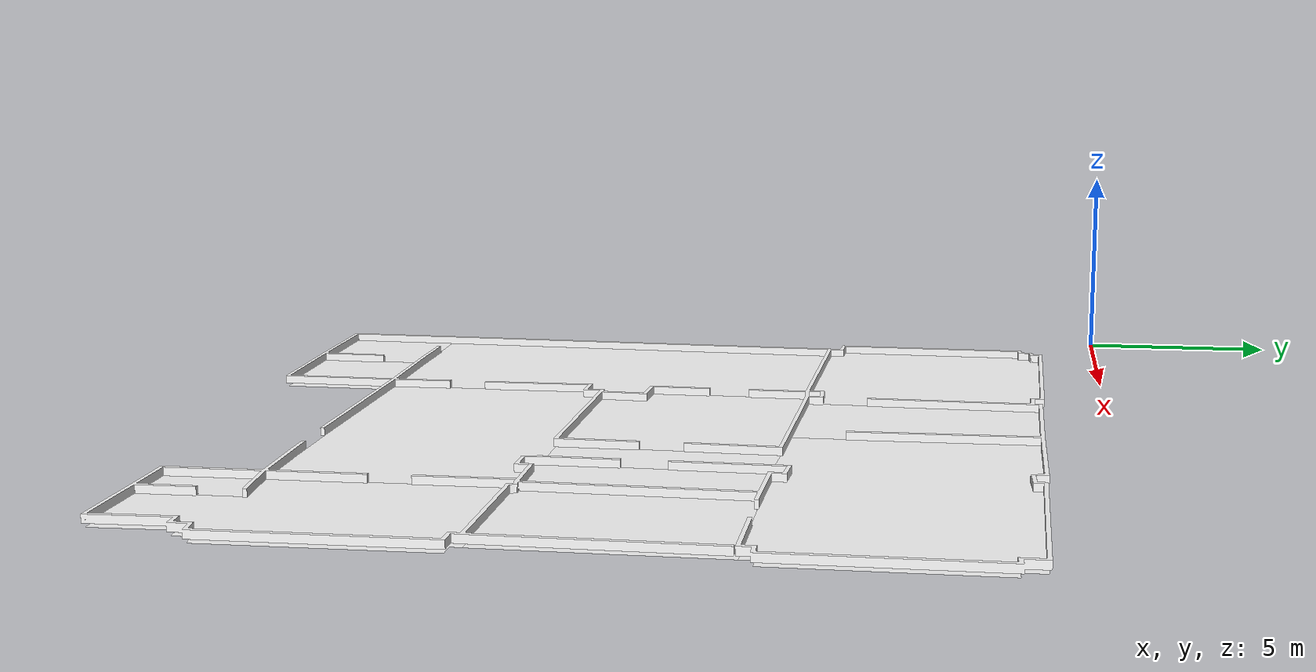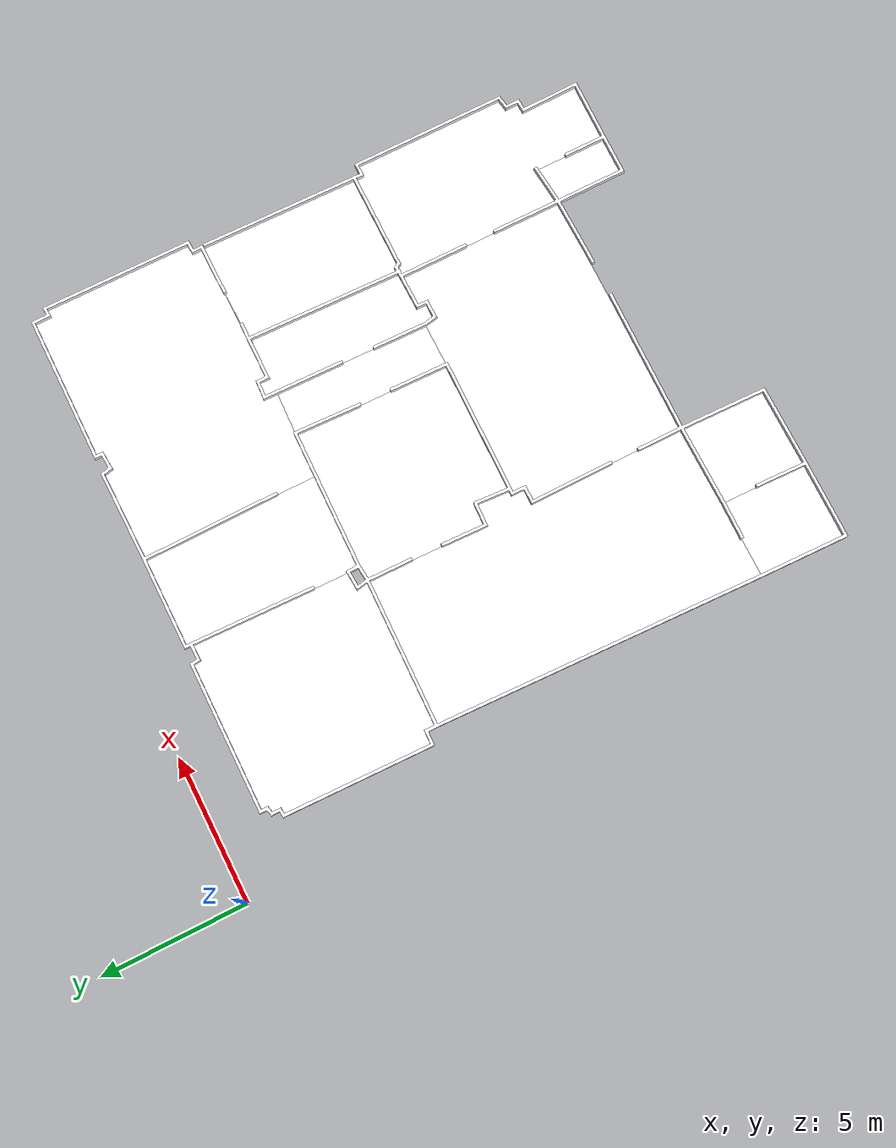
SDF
<?xml version='1.0' encoding='utf-8'?>
<sdf version="1.7">
  <model name="starbots_complete_L1">
    <static>true</static>
    <link name="floor_1">
      <visual name="visual">
        <geometry>
          <mesh>
            <uri>model://starbots_complete_L1/meshes/floor_1.obj</uri>
          </mesh>
        </geometry>
        <material>
          <diffuse>1.0 1.0 1.0</diffuse>
          <specular>0.1 0.1 0.1</specular>
          <pbr>
            <metal>
              <metalness>0.0</metalness>
              <albedo_map>model://starbots_complete_L1/meshes/blue_linoleum.png</albedo_map>
            </metal>
          </pbr>
          <script>
            <uri>model://starbots_complete_L1/meshes/</uri>
            <name>floor_1_Diffuse</name>
          </script>
        </material>
      </visual>
      <collision name="collision">
        <geometry>
          <mesh>
            <uri>model://starbots_complete_L1/meshes/floor_1.obj</uri>
          </mesh>
        </geometry>
        <surface>
          <contact>
            <collide_bitmask>0x01</collide_bitmask>
          </contact>
        </surface>
      </collision>
    </link>
    <link name="floor_2">
      <visual name="visual">
        <geometry>
          <mesh>
            <uri>model://starbots_complete_L1/meshes/floor_2.obj</uri>
          </mesh>
        </geometry>
        <material>
          <diffuse>1.0 1.0 1.0</diffuse>
          <specular>0.1 0.1 0.1</specular>
          <pbr>
            <metal>
              <metalness>0.0</metalness>
              <albedo_map>model://starbots_complete_L1/meshes/blue_linoleum.png</albedo_map>
            </metal>
          </pbr>
          <script>
            <uri>model://starbots_complete_L1/meshes/</uri>
            <name>floor_2_Diffuse</name>
          </script>
        </material>
      </visual>
      <collision name="collision">
        <geometry>
          <mesh>
            <uri>model://starbots_complete_L1/meshes/floor_2.obj</uri>
          </mesh>
        </geometry>
        <surface>
          <contact>
            <collide_bitmask>0x01</collide_bitmask>
          </contact>
        </surface>
      </collision>
    </link>
    <link name="floor_3">
      <visual name="visual">
        <geometry>
          <mesh>
            <uri>model://starbots_complete_L1/meshes/floor_3.obj</uri>
          </mesh>
        </geometry>
        <material>
          <diffuse>1.0 1.0 1.0</diffuse>
          <specular>0.1 0.1 0.1</specular>
          <pbr>
            <metal>
              <metalness>0.0</metalness>
              <albedo_map>model://starbots_complete_L1/meshes/blue_linoleum.png</albedo_map>
            </metal>
          </pbr>
          <script>
            <uri>model://starbots_complete_L1/meshes/</uri>
            <name>floor_3_Diffuse</name>
          </script>
        </material>
      </visual>
      <collision name="collision">
        <geometry>
          <mesh>
            <uri>model://starbots_complete_L1/meshes/floor_3.obj</uri>
          </mesh>
        </geometry>
        <surface>
          <contact>
            <collide_bitmask>0x01</collide_bitmask>
          </contact>
        </surface>
      </collision>
    </link>
    <link name="floor_4">
      <visual name="visual">
        <geometry>
          <mesh>
            <uri>model://starbots_complete_L1/meshes/floor_4.obj</uri>
          </mesh>
        </geometry>
        <material>
          <diffuse>1.0 1.0 1.0</diffuse>
          <specular>0.1 0.1 0.1</specular>
          <pbr>
            <metal>
              <metalness>0.0</metalness>
              <albedo_map>model://starbots_complete_L1/meshes/blue_linoleum.png</albedo_map>
            </metal>
          </pbr>
          <script>
            <uri>model://starbots_complete_L1/meshes/</uri>
            <name>floor_4_Diffuse</name>
          </script>
        </material>
      </visual>
      <collision name="collision">
        <geometry>
          <mesh>
            <uri>model://starbots_complete_L1/meshes/floor_4.obj</uri>
          </mesh>
        </geometry>
        <surface>
          <contact>
            <collide_bitmask>0x01</collide_bitmask>
          </contact>
        </surface>
      </collision>
    </link>
    <link name="floor_5">
      <visual name="visual">
        <geometry>
          <mesh>
            <uri>model://starbots_complete_L1/meshes/floor_5.obj</uri>
          </mesh>
        </geometry>
        <material>
          <diffuse>1.0 1.0 1.0</diffuse>
          <specular>0.1 0.1 0.1</specular>
          <pbr>
            <metal>
              <metalness>0.0</metalness>
              <albedo_map>model://starbots_complete_L1/meshes/blue_linoleum.png</albedo_map>
            </metal>
          </pbr>
          <script>
            <uri>model://starbots_complete_L1/meshes/</uri>
            <name>floor_5_Diffuse</name>
          </script>
        </material>
      </visual>
      <collision name="collision">
        <geometry>
          <mesh>
            <uri>model://starbots_complete_L1/meshes/floor_5.obj</uri>
          </mesh>
        </geometry>
        <surface>
          <contact>
            <collide_bitmask>0x01</collide_bitmask>
          </contact>
        </surface>
      </collision>
    </link>
    <link name="floor_6">
      <visual name="visual">
        <geometry>
          <mesh>
            <uri>model://starbots_complete_L1/meshes/floor_6.obj</uri>
          </mesh>
        </geometry>
        <material>
          <diffuse>1.0 1.0 1.0</diffuse>
          <specular>0.1 0.1 0.1</specular>
          <pbr>
            <metal>
              <metalness>0.0</metalness>
              <albedo_map>model://starbots_complete_L1/meshes/blue_linoleum.png</albedo_map>
            </metal>
          </pbr>
          <script>
            <uri>model://starbots_complete_L1/meshes/</uri>
            <name>floor_6_Diffuse</name>
          </script>
        </material>
      </visual>
      <collision name="collision">
        <geometry>
          <mesh>
            <uri>model://starbots_complete_L1/meshes/floor_6.obj</uri>
          </mesh>
        </geometry>
        <surface>
          <contact>
            <collide_bitmask>0x01</collide_bitmask>
          </contact>
        </surface>
      </collision>
    </link>
    <link name="floor_7">
      <visual name="visual">
        <geometry>
          <mesh>
            <uri>model://starbots_complete_L1/meshes/floor_7.obj</uri>
          </mesh>
        </geometry>
        <material>
          <diffuse>1.0 1.0 1.0</diffuse>
          <specular>0.1 0.1 0.1</specular>
          <pbr>
            <metal>
              <metalness>0.0</metalness>
              <albedo_map>model://starbots_complete_L1/meshes/blue_linoleum.png</albedo_map>
            </metal>
          </pbr>
          <script>
            <uri>model://starbots_complete_L1/meshes/</uri>
            <name>floor_7_Diffuse</name>
          </script>
        </material>
      </visual>
      <collision name="collision">
        <geometry>
          <mesh>
            <uri>model://starbots_complete_L1/meshes/floor_7.obj</uri>
          </mesh>
        </geometry>
        <surface>
          <contact>
            <collide_bitmask>0x01</collide_bitmask>
          </contact>
        </surface>
      </collision>
    </link>
    <link name="floor_8">
      <visual name="visual">
        <geometry>
          <mesh>
            <uri>model://starbots_complete_L1/meshes/floor_8.obj</uri>
          </mesh>
        </geometry>
        <material>
          <diffuse>1.0 1.0 1.0</diffuse>
          <specular>0.1 0.1 0.1</specular>
          <pbr>
            <metal>
              <metalness>0.0</metalness>
              <albedo_map>model://starbots_complete_L1/meshes/blue_linoleum.png</albedo_map>
            </metal>
          </pbr>
          <script>
            <uri>model://starbots_complete_L1/meshes/</uri>
            <name>floor_8_Diffuse</name>
          </script>
        </material>
      </visual>
      <collision name="collision">
        <geometry>
          <mesh>
            <uri>model://starbots_complete_L1/meshes/floor_8.obj</uri>
          </mesh>
        </geometry>
        <surface>
          <contact>
            <collide_bitmask>0x01</collide_bitmask>
          </contact>
        </surface>
      </collision>
    </link>
    <link name="floor_9">
      <visual name="visual">
        <geometry>
          <mesh>
            <uri>model://starbots_complete_L1/meshes/floor_9.obj</uri>
          </mesh>
        </geometry>
        <material>
          <diffuse>1.0 1.0 1.0</diffuse>
          <specular>0.1 0.1 0.1</specular>
          <pbr>
            <metal>
              <metalness>0.0</metalness>
              <albedo_map>model://starbots_complete_L1/meshes/blue_linoleum.png</albedo_map>
            </metal>
          </pbr>
          <script>
            <uri>model://starbots_complete_L1/meshes/</uri>
            <name>floor_9_Diffuse</name>
          </script>
        </material>
      </visual>
      <collision name="collision">
        <geometry>
          <mesh>
            <uri>model://starbots_complete_L1/meshes/floor_9.obj</uri>
          </mesh>
        </geometry>
        <surface>
          <contact>
            <collide_bitmask>0x01</collide_bitmask>
          </contact>
        </surface>
      </collision>
    </link>
    <link name="floor_10">
      <visual name="visual">
        <geometry>
          <mesh>
            <uri>model://starbots_complete_L1/meshes/floor_10.obj</uri>
          </mesh>
        </geometry>
        <material>
          <diffuse>1.0 1.0 1.0</diffuse>
          <specular>0.1 0.1 0.1</specular>
          <pbr>
            <metal>
              <metalness>0.0</metalness>
              <albedo_map>model://starbots_complete_L1/meshes/blue_linoleum.png</albedo_map>
            </metal>
          </pbr>
          <script>
            <uri>model://starbots_complete_L1/meshes/</uri>
            <name>floor_10_Diffuse</name>
          </script>
        </material>
      </visual>
      <collision name="collision">
        <geometry>
          <mesh>
            <uri>model://starbots_complete_L1/meshes/floor_10.obj</uri>
          </mesh>
        </geometry>
        <surface>
          <contact>
            <collide_bitmask>0x01</collide_bitmask>
          </contact>
        </surface>
      </collision>
    </link>
    <link name="floor_11">
      <visual name="visual">
        <geometry>
          <mesh>
            <uri>model://starbots_complete_L1/meshes/floor_11.obj</uri>
          </mesh>
        </geometry>
        <material>
          <diffuse>1.0 1.0 1.0</diffuse>
          <specular>0.1 0.1 0.1</specular>
          <pbr>
            <metal>
              <metalness>0.0</metalness>
              <albedo_map>model://starbots_complete_L1/meshes/blue_linoleum.png</albedo_map>
            </metal>
          </pbr>
          <script>
            <uri>model://starbots_complete_L1/meshes/</uri>
            <name>floor_11_Diffuse</name>
          </script>
        </material>
      </visual>
      <collision name="collision">
        <geometry>
          <mesh>
            <uri>model://starbots_complete_L1/meshes/floor_11.obj</uri>
          </mesh>
        </geometry>
        <surface>
          <contact>
            <collide_bitmask>0x01</collide_bitmask>
          </contact>
        </surface>
      </collision>
    </link>
    <link name="floor_12">
      <visual name="visual">
        <geometry>
          <mesh>
            <uri>model://starbots_complete_L1/meshes/floor_12.obj</uri>
          </mesh>
        </geometry>
        <material>
          <diffuse>1.0 1.0 1.0</diffuse>
          <specular>0.1 0.1 0.1</specular>
          <pbr>
            <metal>
              <metalness>0.0</metalness>
              <albedo_map>model://starbots_complete_L1/meshes/blue_linoleum.png</albedo_map>
            </metal>
          </pbr>
          <script>
            <uri>model://starbots_complete_L1/meshes/</uri>
            <name>floor_12_Diffuse</name>
          </script>
        </material>
      </visual>
      <collision name="collision">
        <geometry>
          <mesh>
            <uri>model://starbots_complete_L1/meshes/floor_12.obj</uri>
          </mesh>
        </geometry>
        <surface>
          <contact>
            <collide_bitmask>0x01</collide_bitmask>
          </contact>
        </surface>
      </collision>
    </link>
    <link name="floor_13">
      <visual name="visual">
        <geometry>
          <mesh>
            <uri>model://starbots_complete_L1/meshes/floor_13.obj</uri>
          </mesh>
        </geometry>
        <material>
          <diffuse>1.0 1.0 1.0</diffuse>
          <specular>0.1 0.1 0.1</specular>
          <pbr>
            <metal>
              <metalness>0.0</metalness>
              <albedo_map>model://starbots_complete_L1/meshes/blue_linoleum.png</albedo_map>
            </metal>
          </pbr>
          <script>
            <uri>model://starbots_complete_L1/meshes/</uri>
            <name>floor_13_Diffuse</name>
          </script>
        </material>
      </visual>
      <collision name="collision">
        <geometry>
          <mesh>
            <uri>model://starbots_complete_L1/meshes/floor_13.obj</uri>
          </mesh>
        </geometry>
        <surface>
          <contact>
            <collide_bitmask>0x01</collide_bitmask>
          </contact>
        </surface>
      </collision>
    </link>
    <link name="wall_1">
      <visual name="wall_1">
        <geometry>
          <mesh>
            <uri>model://starbots_complete_L1/meshes/wall_1.obj</uri>
          </mesh>
        </geometry>
        <transparency>0.0</transparency>
        <material>
          <diffuse>1.0 1.0 1.0</diffuse>
          <specular>0.1 0.1 0.1</specular>
          <pbr>
            <metal>
              <metalness>0.0</metalness>
              <albedo_map>model://starbots_complete_L1/meshes/default.png</albedo_map>
            </metal>
          </pbr>
          <script>
            <uri>model://starbots_complete_L1/meshes/</uri>
            <name>wall_1_Diffuse</name>
          </script>
        </material>
      </visual>
      <collision name="collision">
        <geometry>
          <mesh>
            <uri>model://starbots_complete_L1/meshes/wall_1.obj</uri>
          </mesh>
        </geometry>
        <surface>
          <contact>
            <collide_bitmask>0x01</collide_bitmask>
          </contact>
        </surface>
      </collision>
      <pose>1.7342909891907992 -22.225244384009383 0 0 0 0</pose>
    </link>
  </model>
</sdf>
